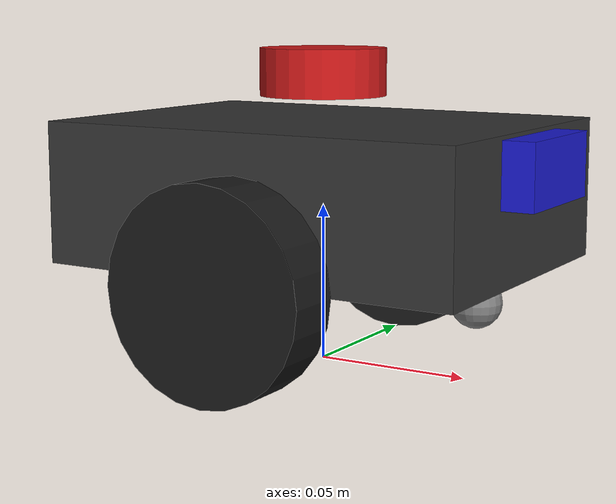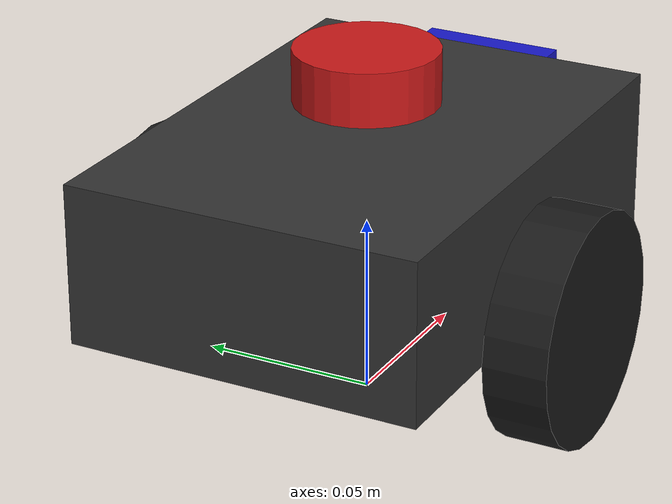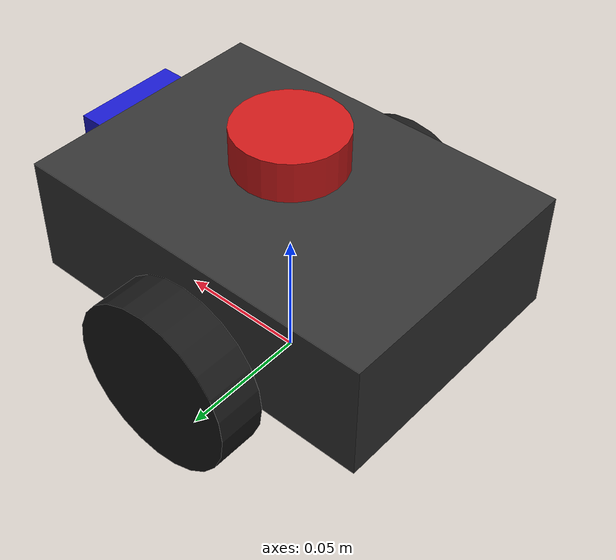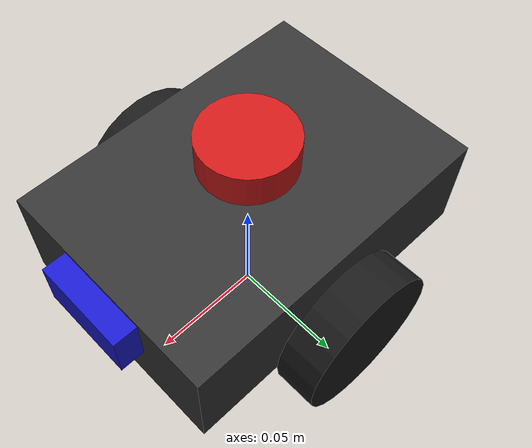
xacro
<?xml version="1.0"?>
<robot xmlns:xacro="http://www.ros.org/wiki/xacro" name="jetbot">

  <xacro:property name="PI" value="3.14159265359"/>

  <!-- Must match training config in robots/jetbot.py -->
  <xacro:property name="wheel_radius" value="0.0325"/>
  <xacro:property name="wheel_width"  value="0.018"/>
  <xacro:property name="wheel_sep"    value="0.118"/>

  <xacro:property name="chassis_l" value="0.14"/>
  <xacro:property name="chassis_w" value="0.10"/>
  <xacro:property name="chassis_h" value="0.045"/>
  <xacro:property name="chassis_z" value="${wheel_radius + chassis_h / 2.0}"/>

  <xacro:property name="caster_r" value="0.008"/>

  <!-- ==================== base ==================== -->
  <link name="base_footprint"/>

  <joint name="base_joint" type="fixed">
    <parent link="base_footprint"/>
    <child  link="base_link"/>
    <origin xyz="0 0 ${chassis_z}" rpy="0 0 0"/>
  </joint>

  <link name="base_link">
    <visual>
      <geometry><box size="${chassis_l} ${chassis_w} ${chassis_h}"/></geometry>
      <material name="dark_grey"><color rgba="0.2 0.2 0.2 1"/></material>
    </visual>
    <collision>
      <geometry><box size="${chassis_l} ${chassis_w} ${chassis_h}"/></geometry>
    </collision>
    <inertial>
      <mass value="0.6"/>
      <inertia ixx="5e-4" ixy="0" ixz="0" iyy="8e-4" iyz="0" izz="8e-4"/>
    </inertial>
  </link>

  <!-- ==================== wheel macro ==================== -->
  <xacro:macro name="wheel" params="prefix y_reflect">
    <joint name="${prefix}_wheel_joint" type="continuous">
      <parent link="base_link"/>
      <child  link="${prefix}_wheel_link"/>
      <origin xyz="0 ${y_reflect * wheel_sep / 2.0} ${-chassis_h / 2.0}"
              rpy="${-PI / 2.0} 0 0"/>
      <axis xyz="0 0 1"/>
      <dynamics friction="0.1" damping="0.01"/>
    </joint>

    <link name="${prefix}_wheel_link">
      <visual>
        <geometry><cylinder radius="${wheel_radius}" length="${wheel_width}"/></geometry>
        <material name="black"><color rgba="0.1 0.1 0.1 1"/></material>
      </visual>
      <collision>
        <geometry><cylinder radius="${wheel_radius}" length="${wheel_width}"/></geometry>
      </collision>
      <inertial>
        <mass value="0.04"/>
        <inertia ixx="1e-5" ixy="0" ixz="0" iyy="1e-5" iyz="0" izz="1e-5"/>
      </inertial>
    </link>

    <gazebo reference="${prefix}_wheel_link">
      <mu1>1.0</mu1>
      <mu2>1.0</mu2>
      <kp>1e6</kp>
      <kd>100</kd>
    </gazebo>
  </xacro:macro>

  <xacro:wheel prefix="left"  y_reflect="1"/>
  <xacro:wheel prefix="right" y_reflect="-1"/>

  <!-- ==================== front caster ==================== -->
  <joint name="caster_joint" type="fixed">
    <parent link="base_link"/>
    <child  link="caster_link"/>
    <origin xyz="${chassis_l / 2.0 - caster_r * 2.0} 0 ${-chassis_h / 2.0 - caster_r}"
            rpy="0 0 0"/>
  </joint>

  <link name="caster_link">
    <visual>
      <geometry><sphere radius="${caster_r}"/></geometry>
      <material name="grey"><color rgba="0.5 0.5 0.5 1"/></material>
    </visual>
    <collision>
      <geometry><sphere radius="${caster_r}"/></geometry>
    </collision>
    <inertial>
      <mass value="0.01"/>
      <inertia ixx="1e-6" ixy="0" ixz="0" iyy="1e-6" iyz="0" izz="1e-6"/>
    </inertial>
  </link>

  <gazebo reference="caster_link">
    <mu1>0.0</mu1>
    <mu2>0.0</mu2>
  </gazebo>

  <!-- ==================== LiDAR ==================== -->
  <joint name="lidar_joint" type="fixed">
    <parent link="base_link"/>
    <child  link="lidar_link"/>
    <origin xyz="0 0 ${chassis_h / 2.0 + 0.015}" rpy="0 0 0"/>
  </joint>

  <link name="lidar_link">
    <visual>
      <geometry><cylinder radius="0.02" length="0.015"/></geometry>
      <material name="red"><color rgba="0.8 0.1 0.1 1"/></material>
    </visual>
    <inertial>
      <mass value="0.02"/>
      <inertia ixx="1e-6" ixy="0" ixz="0" iyy="1e-6" iyz="0" izz="1e-6"/>
    </inertial>
  </link>

  <gazebo reference="lidar_link">
    <sensor name="lidar" type="ray">
      <always_on>true</always_on>
      <visualize>true</visualize>
      <update_rate>10</update_rate>
      <ray>
        <scan>
          <horizontal>
            <samples>360</samples>
            <resolution>1</resolution>
            <min_angle>0</min_angle>
            <max_angle>${2.0 * PI}</max_angle>
          </horizontal>
        </scan>
        <range>
          <min>0.08</min>
          <max>3.5</max>
          <resolution>0.01</resolution>
        </range>
        <noise>
          <type>gaussian</type>
          <mean>0</mean>
          <stddev>0.005</stddev>
        </noise>
      </ray>
      <plugin name="laser_scan" filename="libgazebo_ros_ray_sensor.so">
        <ros><namespace>/</namespace></ros>
        <output_type>sensor_msgs/LaserScan</output_type>
        <topic_name>scan</topic_name>
        <frame_name>lidar_link</frame_name>
      </plugin>
    </sensor>
  </gazebo>

  <!-- ==================== front camera ==================== -->
  <joint name="camera_joint" type="fixed">
    <parent link="base_link"/>
    <child  link="camera_link"/>
    <origin xyz="${chassis_l / 2.0} 0 ${chassis_h / 4.0}" rpy="0 0 0"/>
  </joint>

  <link name="camera_link">
    <visual>
      <geometry><box size="0.02 0.04 0.02"/></geometry>
      <material name="blue"><color rgba="0.1 0.1 0.8 1"/></material>
    </visual>
    <inertial>
      <mass value="0.01"/>
      <inertia ixx="1e-6" ixy="0" ixz="0" iyy="1e-6" iyz="0" izz="1e-6"/>
    </inertial>
  </link>

  <joint name="camera_optical_joint" type="fixed">
    <parent link="camera_link"/>
    <child  link="camera_optical_link"/>
    <origin xyz="0 0 0" rpy="${-PI / 2.0} 0 ${-PI / 2.0}"/>
  </joint>

  <link name="camera_optical_link"/>

  <gazebo reference="camera_link">
    <sensor name="camera" type="camera">
      <always_on>true</always_on>
      <visualize>false</visualize>
      <update_rate>10</update_rate>
      <camera>
        <horizontal_fov>1.047</horizontal_fov>
        <image>
          <width>640</width>
          <height>480</height>
          <format>R8G8B8</format>
        </image>
        <clip>
          <near>0.1</near>
          <far>100</far>
        </clip>
      </camera>
      <plugin name="camera_driver" filename="libgazebo_ros_camera.so">
        <ros><namespace>/</namespace></ros>
        <camera_name>front_camera</camera_name>
        <frame_name>camera_optical_link</frame_name>
      </plugin>
    </sensor>
  </gazebo>

  <!-- ==================== Gazebo diff-drive ==================== -->
  <gazebo>
    <plugin name="diff_drive" filename="libgazebo_ros_diff_drive.so">
      <ros><namespace>/</namespace></ros>
      <left_joint>left_wheel_joint</left_joint>
      <right_joint>right_wheel_joint</right_joint>
      <wheel_separation>${wheel_sep}</wheel_separation>
      <wheel_diameter>${wheel_radius * 2.0}</wheel_diameter>
      <max_wheel_torque>0.5</max_wheel_torque>
      <max_wheel_acceleration>2.0</max_wheel_acceleration>
      <publish_odom>true</publish_odom>
      <publish_odom_tf>true</publish_odom_tf>
      <publish_wheel_tf>true</publish_wheel_tf>
      <odometry_topic>odom</odometry_topic>
      <command_topic>cmd_vel</command_topic>
      <robot_base_frame>base_footprint</robot_base_frame>
      <odometry_frame>odom</odometry_frame>
      <update_rate>50</update_rate>
    </plugin>
  </gazebo>

</robot>
